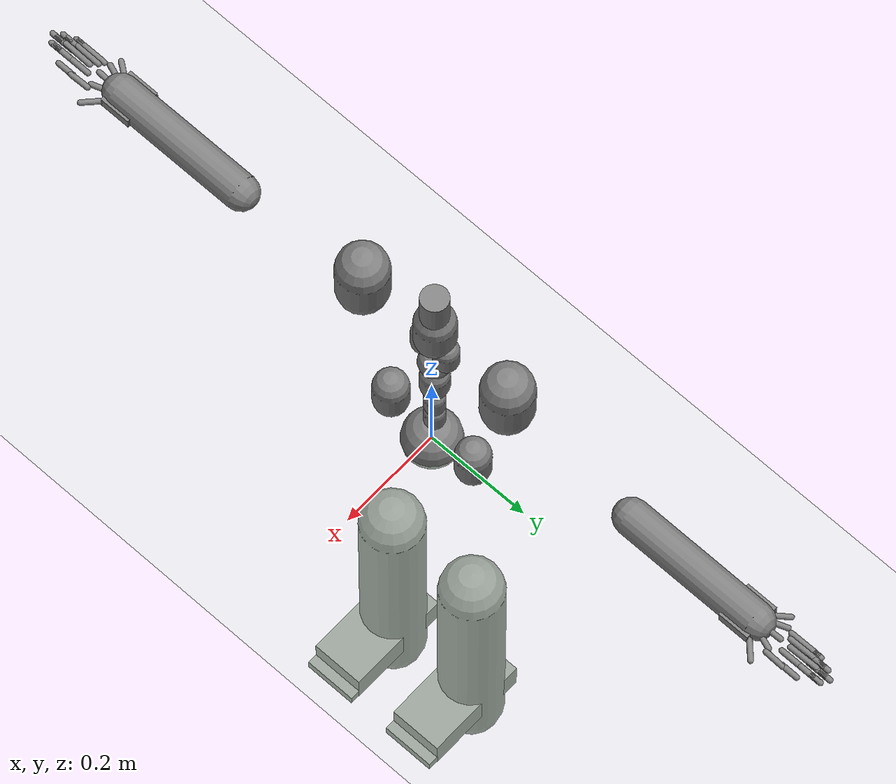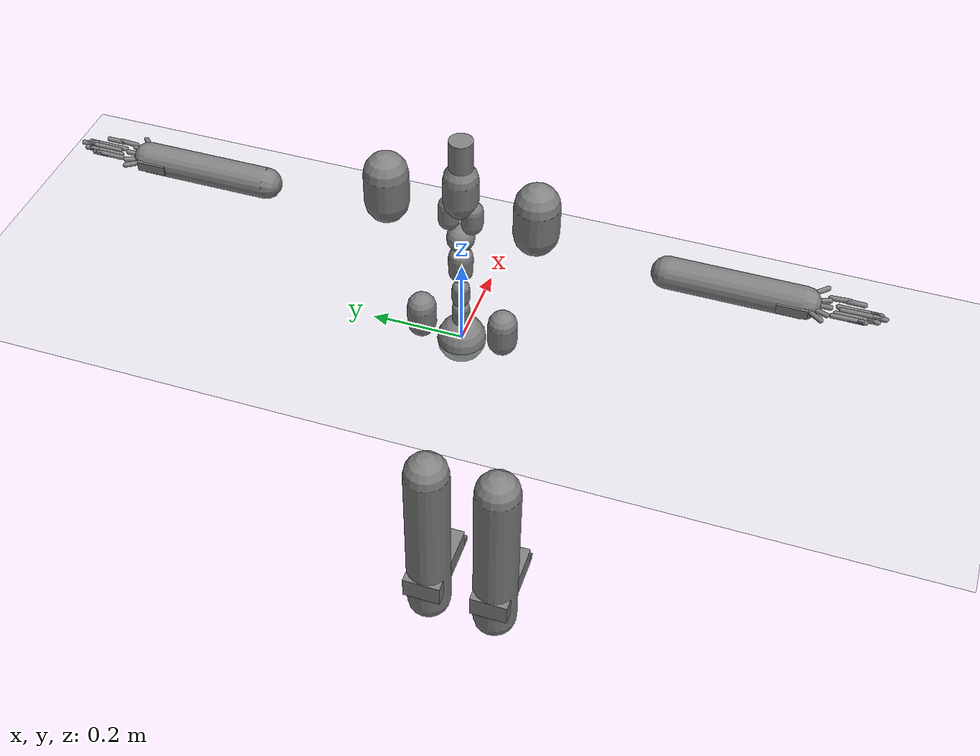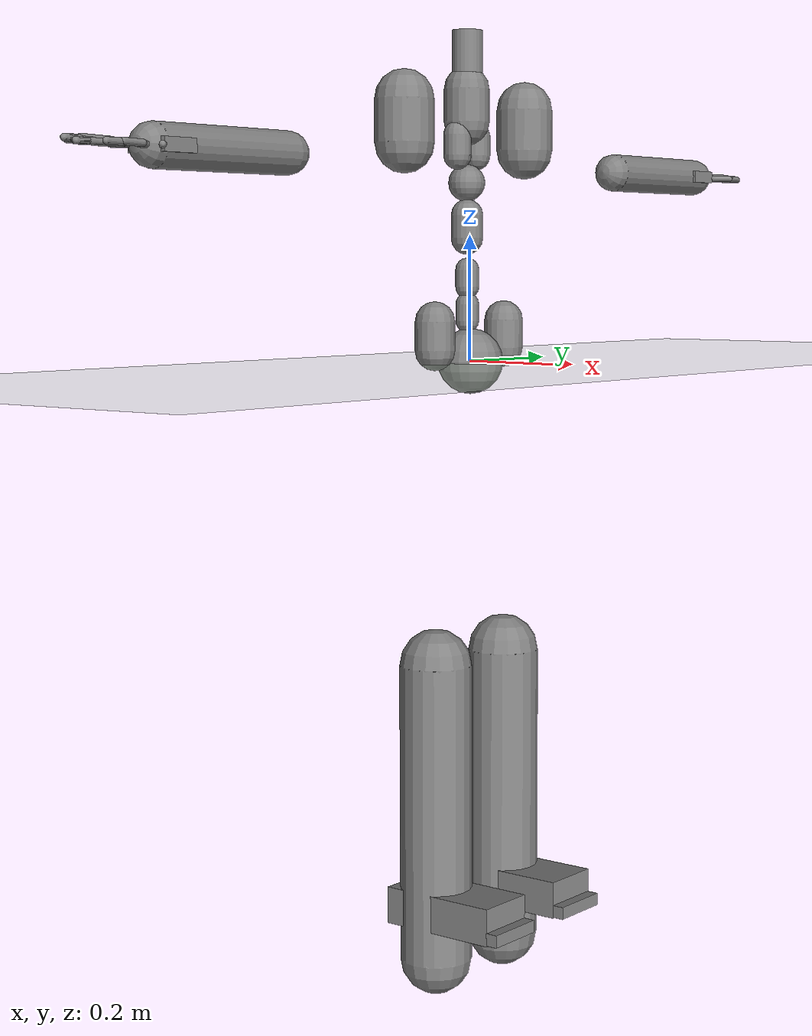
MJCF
<?xml version="1.0" ?>
<mujoco model="humanoid">
  <compiler coordinate="local"/>
  <statistic extent="2" center="0 0 1"/>
  <option timestep="0.00555"/>
  <default>
    <motor ctrlrange="-1 1" ctrllimited="true"/>
    <geom type="capsule" condim="1" friction="1.0 0.05 0.05" solimp=".9 .99 .003" solref=".015 1"/>
    <joint type="hinge" damping="0.1" stiffness="5" armature=".007" limited="true" solimplimit="0 .99 .01"/>
    <site size=".04" group="3"/>
  </default>
  <asset>
    <texture type="skybox" builtin="gradient" rgb1=".4 .5 .6" rgb2="0 0 0" width="100" height="100"/>
    <texture builtin="flat" height="1278" mark="cross" markrgb="1 1 1" name="texgeom" random="0.01" rgb1="0.8 0.6 0.4" rgb2="0.8 0.6 0.4" type="cube" width="127"/>
    <texture builtin="checker" height="100" name="texplane" rgb1="0 0 0" rgb2="0.8 0.8 0.8" type="2d" width="100"/>
    <material name="MatPlane" reflectance="0.5" shininess="1" specular="1" texrepeat="60 60" texture="texplane"/>
    <material name="geom" texture="texgeom" texuniform="true"/>
  </asset>
  <worldbody>
    <light cutoff="100" diffuse="1 1 1" dir="-0 0 -1.3" directional="true" exponent="1" pos="0 0 1.3" specular=".1 .1 .1"/>
    <geom conaffinity="1" condim="3" name="floor" pos="0 0 0" rgba="0.8 0.9 0.8 1" size="100 100 .2" type="plane" material="MatPlane"/>
    <body name="pHipOrigin" pos="0 0 0">
      <freejoint name="pHipOrigin"/>
      <geom type="sphere" contype="1" conaffinity="1" density="4629.6296296296305" size="0.05241" pos="0.0000 0.0000 -0.0000"/>
      <body name="jL5S1" pos="-0.00590591 0 0.05315303">
        <geom type="capsule" contype="1" conaffinity="1" density="1000" fromto="0 0 0.01070 0 0 0.03744" size="0.01872"/>
        <joint name="jL5S1_x" type="hinge" pos="0 0 0" axis="1 0 0" stiffness="500" damping="500" armature="0.02" range="-180.0000 180.0000"/>
        <joint name="jL5S1_y" type="hinge" pos="0 0 0" axis="0 1 0" stiffness="500" damping="500" armature="0.02" range="-180.0000 180.0000"/>
        <joint name="jL5S1_z" type="hinge" pos="0 0 0" axis="0 0 1" stiffness="500" damping="500" armature="0.02" range="-180.0000 180.0000"/>
        <body name="jL4L3" pos="0 0 0.05416304">
          <geom type="capsule" contype="1" conaffinity="1" density="1000" fromto="0 0 0.01083 0 0 0.03791" size="0.01896"/>
          <joint name="jL4L3_x" type="hinge" pos="0 0 0" axis="1 0 0" stiffness="500" damping="500" armature="0.02" range="-180.0000 180.0000"/>
          <joint name="jL4L3_y" type="hinge" pos="0 0 0" axis="0 1 0" stiffness="500" damping="500" armature="0.02" range="-180.0000 180.0000"/>
          <joint name="jL4L3_z" type="hinge" pos="0 0 0" axis="0 0 1" stiffness="500" damping="500" armature="0.02" range="-180.0000 180.0000"/>
          <body name="jL1T12" pos="-0.00056275 0 0.07294226">
            <geom type="capsule" contype="1" conaffinity="1" density="1000" fromto="0 0 0.01459 0 0 0.05106" size="0.02553"/>
            <joint name="jL1T12_x" type="hinge" pos="0 0 0" axis="1 0 0" stiffness="500" damping="500" armature="0.02" range="-180.0000 180.0000"/>
            <joint name="jL1T12_y" type="hinge" pos="0 0 0" axis="0 1 0" stiffness="500" damping="500" armature="0.02" range="-180.0000 180.0000"/>
            <joint name="jL1T12_z" type="hinge" pos="0 0 0" axis="0 0 1" stiffness="500" damping="500" armature="0.02" range="-180.0000 180.0000"/>
            <body name="jT9T8" pos="-0.00056292 0 0.07282271">
              <geom type="sphere" contype="1" conaffinity="1" density="1000" size="0.02913" pos="0.000 0.0000 0.029130"/>
              <joint name="jT9T8_x" type="hinge" pos="0 0 0" axis="1 0 0" stiffness="500" damping="500" armature="0.02" range="-180.0000 180.0000"/>
              <joint name="jT9T8_y" type="hinge" pos="0 0 0" axis="0 1 0" stiffness="500" damping="500" armature="0.02" range="-180.0000 180.0000"/>
              <joint name="jT9T8_z" type="hinge" pos="0 0 0" axis="0 0 1" stiffness="500" damping="500" armature="0.02" range="-180.0000 180.0000"/>
              <body name="jT1C7" pos="0 0 0.10307300">
                <geom type="capsule" contype="1" conaffinity="1" density="1000" fromto="0 0 0.02061 0 0 0.07215" size="0.03608"/>
                <joint name="jT1C7_x" type="hinge" pos="0 0 0" axis="1 0 0" stiffness="500" damping="500" armature="0.02" range="-180.0000 180.0000"/>
                <joint name="jT1C7_y" type="hinge" pos="0 0 0" axis="0 1 0" stiffness="500" damping="500" armature="0.02" range="-180.0000 180.0000"/>
                <joint name="jT1C7_z" type="hinge" pos="0 0 0" axis="0 0 1" stiffness="500" damping="500" armature="0.02" range="-180.0000 180.0000"/>
                <body name="jC1Head" pos="0.00096366 0 0.08168250">
                  <geom type="cylinder" contype="1" conaffinity="1" density="1000" fromto="0 0 0 0 0 0.08169" size="0.02451"/>
                  <joint name="jC1Head_x" type="hinge" pos="0 0 0" axis="1 0 0" stiffness="500" damping="500" armature="0.02" range="-180.0000 180.0000"/>
                  <joint name="jC1Head_y" type="hinge" pos="0 0 0" axis="0 1 0" stiffness="500" damping="500" armature="0.02" range="-180.0000 180.0000"/>
                  <joint name="jC1Head_z" type="hinge" pos="0 0 0" axis="0 0 1" stiffness="500" damping="500" armature="0.02" range="-180.0000 180.0000"/>
                </body>
              </body>
              <body name="jRightT4Shoulder" pos="0 -0.02407718 0.05870546">
                <geom type="capsule" contype="1" conaffinity="1" density="1000" fromto="0 0 0.01269 0 0 0.04442" size="0.02221"/>
                <joint name="jRightT4Shoulder_x" type="hinge" pos="0 0 0" axis="1 0 0" stiffness="500" damping="500" armature="0.02" range="-180.0000 180.0000"/>
                <joint name="jRightT4Shoulder_y" type="hinge" pos="0 0 0" axis="0 1 0" stiffness="500" damping="500" armature="0.02" range="-180.0000 180.0000"/>
                <joint name="jRightT4Shoulder_z" type="hinge" pos="0 0 0" axis="0 0 1" stiffness="500" damping="500" armature="0.02" range="-180.0000 180.0000"/>
                <body name="jRightShoulder" pos="0 -0.13158876 0">
                  <geom type="capsule" contype="1" conaffinity="1" density="1000" fromto="0 0 0.02632 0 0 0.09211" size="0.04606"/>
                  <joint name="jRightShoulder_x" type="hinge" pos="0 0 0" axis="1 0 0" stiffness="500" damping="500" armature="0.02" range="-180.0000 180.0000"/>
                  <joint name="jRightShoulder_y" type="hinge" pos="0 0 0" axis="0 1 0" stiffness="500" damping="500" armature="0.02" range="-180.0000 180.0000"/>
                  <joint name="jRightShoulder_z" type="hinge" pos="0 0 0" axis="0 0 1" stiffness="500" damping="500" armature="0.02" range="-180.0000 180.0000"/>
                  <body name="jRightElbow" pos="0 -0.26473373 0">
                    <geom type="capsule" contype="1" conaffinity="1" density="1000" fromto="0 0 0 0.00000000 -0.26473373 0.00000000" size="0.03177"/>
                    <joint name="jRightElbow_x" type="hinge" pos="0 0 0" axis="1 0 0" stiffness="500" damping="500" armature="0.02" range="-180.0000 180.0000"/>
                    <joint name="jRightElbow_y" type="hinge" pos="0 0 0" axis="0 1 0" stiffness="500" damping="500" armature="0.02" range="-180.0000 180.0000"/>
                    <joint name="jRightElbow_z" type="hinge" pos="0 0 0" axis="0 0 1" stiffness="500" damping="500" armature="0.02" range="-180.0000 180.0000"/>
                    <body name="jRightWrist" pos="0.00009903 -0.24605226 0">
                      <geom density="1000" type="box" pos="0 0 0" size="0.035 0.03 0.01" quat="1.0000 0.0000 0.0000 0.0000"/>
                      <joint name="jRightWrist_x" type="hinge" pos="0 0 0" axis="1 0 0" stiffness="500" damping="500" armature="0.02" range="-180.0000 180.0000"/>
                      <joint name="jRightWrist_y" type="hinge" pos="0 0 0" axis="0 1 0" stiffness="500" damping="500" armature="0.02" range="-180.0000 180.0000"/>
                      <joint name="jRightWrist_z" type="hinge" pos="0 0 0" axis="0 0 1" stiffness="500" damping="500" armature="0.02" range="-180.0000 180.0000"/>
                      <body name="jRightFirstCMC" pos="0.02861520 -0.02742928 -0.00129587">
                        <geom type="capsule" contype="1" conaffinity="1" density="1000" fromto="0 0 0 0.02861520 -0.02742928 -0.00129587" size="0.005"/>
                        <joint name="jRightFirstCMC_x" type="hinge" pos="0 0 0" axis="1 0 0" stiffness="500" damping="500" armature="0.02" range="-180.0000 180.0000"/>
                        <joint name="jRightFirstCMC_y" type="hinge" pos="0 0 0" axis="0 1 0" stiffness="500" damping="500" armature="0.02" range="-180.0000 180.0000"/>
                        <joint name="jRightFirstCMC_z" type="hinge" pos="0 0 0" axis="0 0 1" stiffness="500" damping="500" armature="0.02" range="-180.0000 180.0000"/>
                        <body name="jRightFirstMCP" pos="0.00129311 -0.03649075 0.00077105">
                          <geom type="capsule" contype="1" conaffinity="1" density="1000" fromto="0 0 0 0.00129311 -0.03649075 0.00077105" size="0.005"/>
                          <joint name="jRightFirstMCP_x" type="hinge" pos="0 0 0" axis="1 0 0" stiffness="500" damping="500" armature="0.02" range="-180.0000 180.0000"/>
                          <joint name="jRightFirstMCP_y" type="hinge" pos="0 0 0" axis="0 1 0" stiffness="500" damping="500" armature="0.02" range="-180.0000 180.0000"/>
                          <joint name="jRightFirstMCP_z" type="hinge" pos="0 0 0" axis="0 0 1" stiffness="500" damping="500" armature="0.02" range="-180.0000 180.0000"/>
                          <body name="jRightIP" pos="0 -0.03208752 0">
                            <geom type="capsule" contype="1" conaffinity="1" density="1000" fromto="0 0 0 0.00000000 -0.03208752 0.00000000" size="0.005"/>
                            <joint name="jRightIP_x" type="hinge" pos="0 0 0" axis="1 0 0" stiffness="500" damping="500" armature="0.02" range="-180.0000 180.0000"/>
                            <joint name="jRightIP_y" type="hinge" pos="0 0 0" axis="0 1 0" stiffness="500" damping="500" armature="0.02" range="-180.0000 180.0000"/>
                            <joint name="jRightIP_z" type="hinge" pos="0 0 0" axis="0 0 1" stiffness="500" damping="500" armature="0.02" range="-180.0000 180.0000"/>
                          </body>
                        </body>
                      </body>
                      <body name="jRightSecondCMC" pos="0.01096638 -0.03204030 -0.00055886">
                        <geom type="capsule" contype="1" conaffinity="1" density="1000" fromto="0 0 0 0.01096638 -0.03204030 -0.00055886" size="0.005"/>
                        <joint name="jRightSecondCMC_x" type="hinge" pos="0 0 0" axis="1 0 0" stiffness="500" damping="500" armature="0.02" range="-180.0000 180.0000"/>
                        <joint name="jRightSecondCMC_y" type="hinge" pos="0 0 0" axis="0 1 0" stiffness="500" damping="500" armature="0.02" range="-180.0000 180.0000"/>
                        <joint name="jRightSecondCMC_z" type="hinge" pos="0 0 0" axis="0 0 1" stiffness="500" damping="500" armature="0.02" range="-180.0000 180.0000"/>
                        <body name="jRightSecondMCP" pos="-0.00030859 -0.04921823 -0.00051056">
                          <geom type="capsule" contype="1" conaffinity="1" density="1000" fromto="0 0 0 -0.00030859 -0.04921823 -0.00051056" size="0.005"/>
                          <joint name="jRightSecondMCP_x" type="hinge" pos="0 0 0" axis="1 0 0" stiffness="500" damping="500" armature="0.02" range="-180.0000 180.0000"/>
                          <joint name="jRightSecondMCP_y" type="hinge" pos="0 0 0" axis="0 1 0" stiffness="500" damping="500" armature="0.02" range="-180.0000 180.0000"/>
                          <joint name="jRightSecondMCP_z" type="hinge" pos="0 0 0" axis="0 0 1" stiffness="500" damping="500" armature="0.02" range="-180.0000 180.0000"/>
                          <body name="jRightSecondPIP" pos="0 -0.03863629 0">
                            <geom type="capsule" contype="1" conaffinity="1" density="1000" fromto="0 0 0 0.00000000 -0.03863629 0.00000000" size="0.005"/>
                            <joint name="jRightSecondPIP_x" type="hinge" pos="0 0 0" axis="1 0 0" stiffness="500" damping="500" armature="0.02" range="-180.0000 180.0000"/>
                            <joint name="jRightSecondPIP_y" type="hinge" pos="0 0 0" axis="0 1 0" stiffness="500" damping="500" armature="0.02" range="-180.0000 180.0000"/>
                            <joint name="jRightSecondPIP_z" type="hinge" pos="0 0 0" axis="0 0 1" stiffness="500" damping="500" armature="0.02" range="-180.0000 180.0000"/>
                            <body name="jRightSecondDIP" pos="0 -0.02110925 0">
                              <geom type="capsule" contype="1" conaffinity="1" density="1000" fromto="0 0 0 0.00000000 -0.02110925 0.00000000" size="0.005"/>
                              <joint name="jRightSecondDIP_x" type="hinge" pos="0 0 0" axis="1 0 0" stiffness="500" damping="500" armature="0.02" range="-180.0000 180.0000"/>
                              <joint name="jRightSecondDIP_y" type="hinge" pos="0 0 0" axis="0 1 0" stiffness="500" damping="500" armature="0.02" range="-180.0000 180.0000"/>
                              <joint name="jRightSecondDIP_z" type="hinge" pos="0 0 0" axis="0 0 1" stiffness="500" damping="500" armature="0.02" range="-180.0000 180.0000"/>
                            </body>
                          </body>
                        </body>
                      </body>
                      <body name="jRightThirdCMC" pos="-0.00062600 -0.03385265 0.00142322">
                        <geom type="capsule" contype="1" conaffinity="1" density="1000" fromto="0 0 0 -0.00062600 -0.03385265 0.00142322" size="0.005"/>
                        <joint name="jRightThirdCMC_x" type="hinge" pos="0 0 0" axis="1 0 0" stiffness="500" damping="500" armature="0.02" range="-180.0000 180.0000"/>
                        <joint name="jRightThirdCMC_y" type="hinge" pos="0 0 0" axis="0 1 0" stiffness="500" damping="500" armature="0.02" range="-180.0000 180.0000"/>
                        <joint name="jRightThirdCMC_z" type="hinge" pos="0 0 0" axis="0 0 1" stiffness="500" damping="500" armature="0.02" range="-180.0000 180.0000"/>
                        <body name="jRightThirdMCP" pos="-0.00065563 -0.05431923 0.00147782">
                          <geom type="capsule" contype="1" conaffinity="1" density="1000" fromto="0 0 0 -0.00065563 -0.05431923 0.00147782" size="0.005"/>
                          <joint name="jRightThirdMCP_x" type="hinge" pos="0 0 0" axis="1 0 0" stiffness="500" damping="500" armature="0.02" range="-180.0000 180.0000"/>
                          <joint name="jRightThirdMCP_y" type="hinge" pos="0 0 0" axis="0 1 0" stiffness="500" damping="500" armature="0.02" range="-180.0000 180.0000"/>
                          <joint name="jRightThirdMCP_z" type="hinge" pos="0 0 0" axis="0 0 1" stiffness="500" damping="500" armature="0.02" range="-180.0000 180.0000"/>
                          <body name="jRightThirdPIP" pos="0 -0.03811330 0">
                            <geom type="capsule" contype="1" conaffinity="1" density="1000" fromto="0 0 0 0.00000000 -0.03811330 0.00000000" size="0.005"/>
                            <joint name="jRightThirdPIP_x" type="hinge" pos="0 0 0" axis="1 0 0" stiffness="500" damping="500" armature="0.02" range="-180.0000 180.0000"/>
                            <joint name="jRightThirdPIP_y" type="hinge" pos="0 0 0" axis="0 1 0" stiffness="500" damping="500" armature="0.02" range="-180.0000 180.0000"/>
                            <joint name="jRightThirdPIP_z" type="hinge" pos="0 0 0" axis="0 0 1" stiffness="500" damping="500" armature="0.02" range="-180.0000 180.0000"/>
                            <body name="jRightThirdDIP" pos="0 -0.02242091 0">
                              <geom type="capsule" contype="1" conaffinity="1" density="1000" fromto="0 0 0 0.00000000 -0.02242091 0.00000000" size="0.005"/>
                              <joint name="jRightThirdDIP_x" type="hinge" pos="0 0 0" axis="1 0 0" stiffness="500" damping="500" armature="0.02" range="-180.0000 180.0000"/>
                              <joint name="jRightThirdDIP_y" type="hinge" pos="0 0 0" axis="0 1 0" stiffness="500" damping="500" armature="0.02" range="-180.0000 180.0000"/>
                              <joint name="jRightThirdDIP_z" type="hinge" pos="0 0 0" axis="0 0 1" stiffness="500" damping="500" armature="0.02" range="-180.0000 180.0000"/>
                            </body>
                          </body>
                        </body>
                      </body>
                      <body name="jRightFourthCMC" pos="-0.01147633 -0.03196349 0.00075237">
                        <geom type="capsule" contype="1" conaffinity="1" density="1000" fromto="0 0 0 -0.01147633 -0.03196349 0.00075237" size="0.005"/>
                        <joint name="jRightFourthCMC_x" type="hinge" pos="0 0 0" axis="1 0 0" stiffness="500" damping="500" armature="0.02" range="-180.0000 180.0000"/>
                        <joint name="jRightFourthCMC_y" type="hinge" pos="0 0 0" axis="0 1 0" stiffness="500" damping="500" armature="0.02" range="-180.0000 180.0000"/>
                        <joint name="jRightFourthCMC_z" type="hinge" pos="0 0 0" axis="0 0 1" stiffness="500" damping="500" armature="0.02" range="-180.0000 180.0000"/>
                        <body name="jRightFourthMCP" pos="-0.00034410 -0.04716260 0.00074096">
                          <geom type="capsule" contype="1" conaffinity="1" density="1000" fromto="0 0 0 -0.00034410 -0.04716260 0.00074096" size="0.005"/>
                          <joint name="jRightFourthMCP_x" type="hinge" pos="0 0 0" axis="1 0 0" stiffness="500" damping="500" armature="0.02" range="-180.0000 180.0000"/>
                          <joint name="jRightFourthMCP_y" type="hinge" pos="0 0 0" axis="0 1 0" stiffness="500" damping="500" armature="0.02" range="-180.0000 180.0000"/>
                          <joint name="jRightFourthMCP_z" type="hinge" pos="0 0 0" axis="0 0 1" stiffness="500" damping="500" armature="0.02" range="-180.0000 180.0000"/>
                          <body name="jRightFourthPIP" pos="0 -0.03600857 0">
                            <geom type="capsule" contype="1" conaffinity="1" density="1000" fromto="0 0 0 0.00000000 -0.03600857 0.00000000" size="0.005"/>
                            <joint name="jRightFourthPIP_x" type="hinge" pos="0 0 0" axis="1 0 0" stiffness="500" damping="500" armature="0.02" range="-180.0000 180.0000"/>
                            <joint name="jRightFourthPIP_y" type="hinge" pos="0 0 0" axis="0 1 0" stiffness="500" damping="500" armature="0.02" range="-180.0000 180.0000"/>
                            <joint name="jRightFourthPIP_z" type="hinge" pos="0 0 0" axis="0 0 1" stiffness="500" damping="500" armature="0.02" range="-180.0000 180.0000"/>
                            <body name="jRightFourthDIP" pos="0 -0.02138583 0">
                              <geom type="capsule" contype="1" conaffinity="1" density="1000" fromto="0 0 0 0.00000000 -0.02138583 0.00000000" size="0.005"/>
                              <joint name="jRightFourthDIP_x" type="hinge" pos="0 0 0" axis="1 0 0" stiffness="500" damping="500" armature="0.02" range="-180.0000 180.0000"/>
                              <joint name="jRightFourthDIP_y" type="hinge" pos="0 0 0" axis="0 1 0" stiffness="500" damping="500" armature="0.02" range="-180.0000 180.0000"/>
                              <joint name="jRightFourthDIP_z" type="hinge" pos="0 0 0" axis="0 0 1" stiffness="500" damping="500" armature="0.02" range="-180.0000 180.0000"/>
                            </body>
                          </body>
                        </body>
                      </body>
                      <body name="jRightFifthCMC" pos="-0.02006048 -0.02795199 0.00055140">
                        <geom type="capsule" contype="1" conaffinity="1" density="1000" fromto="0 0 0 -0.02006048 -0.02795199 0.00055140" size="0.005"/>
                        <joint name="jRightFifthCMC_x" type="hinge" pos="0 0 0" axis="1 0 0" stiffness="500" damping="500" armature="0.02" range="-180.0000 180.0000"/>
                        <joint name="jRightFifthCMC_y" type="hinge" pos="0 0 0" axis="0 1 0" stiffness="500" damping="500" armature="0.02" range="-180.0000 180.0000"/>
                        <joint name="jRightFifthCMC_z" type="hinge" pos="0 0 0" axis="0 0 1" stiffness="500" damping="500" armature="0.02" range="-180.0000 180.0000"/>
                        <body name="jRightFifthMCP" pos="-0.00000675 -0.04568322 0.00062866">
                          <geom type="capsule" contype="1" conaffinity="1" density="1000" fromto="0 0 0 -0.00000675 -0.04568322 0.00062866" size="0.005"/>
                          <joint name="jRightFifthMCP_x" type="hinge" pos="0 0 0" axis="1 0 0" stiffness="500" damping="500" armature="0.02" range="-180.0000 180.0000"/>
                          <joint name="jRightFifthMCP_y" type="hinge" pos="0 0 0" axis="0 1 0" stiffness="500" damping="500" armature="0.02" range="-180.0000 180.0000"/>
                          <joint name="jRightFifthMCP_z" type="hinge" pos="0 0 0" axis="0 0 1" stiffness="500" damping="500" armature="0.02" range="-180.0000 180.0000"/>
                          <body name="jRightFifthPIP" pos="0 -0.03000326 0">
                            <geom type="capsule" contype="1" conaffinity="1" density="1000" fromto="0 0 0 0.00000000 -0.03000326 0.00000000" size="0.005"/>
                            <joint name="jRightFifthPIP_x" type="hinge" pos="0 0 0" axis="1 0 0" stiffness="500" damping="500" armature="0.02" range="-180.0000 180.0000"/>
                            <joint name="jRightFifthPIP_y" type="hinge" pos="0 0 0" axis="0 1 0" stiffness="500" damping="500" armature="0.02" range="-180.0000 180.0000"/>
                            <joint name="jRightFifthPIP_z" type="hinge" pos="0 0 0" axis="0 0 1" stiffness="500" damping="500" armature="0.02" range="-180.0000 180.0000"/>
                            <body name="jRightFifthDIP" pos="0 -0.01631417 0">
                              <geom type="capsule" contype="1" conaffinity="1" density="1000" fromto="0 0 0 0.00000000 -0.01631417 0.00000000" size="0.005"/>
                              <joint name="jRightFifthDIP_x" type="hinge" pos="0 0 0" axis="1 0 0" stiffness="500" damping="500" armature="0.02" range="-180.0000 180.0000"/>
                              <joint name="jRightFifthDIP_y" type="hinge" pos="0 0 0" axis="0 1 0" stiffness="500" damping="500" armature="0.02" range="-180.0000 180.0000"/>
                              <joint name="jRightFifthDIP_z" type="hinge" pos="0 0 0" axis="0 0 1" stiffness="500" damping="500" armature="0.02" range="-180.0000 180.0000"/>
                            </body>
                          </body>
                        </body>
                      </body>
                    </body>
                  </body>
                </body>
              </body>
              <body name="jLeftT4Shoulder" pos="0 0.02423874 0.05909937">
                <geom type="capsule" contype="1" conaffinity="1" density="1000" fromto="0 0 0.01278 0 0 0.04471" size="0.02236"/>
                <joint name="jLeftT4Shoulder_x" type="hinge" pos="0 0 0" axis="1 0 0" stiffness="500" damping="500" armature="0.02" range="-180.0000 180.0000"/>
                <joint name="jLeftT4Shoulder_y" type="hinge" pos="0 0 0" axis="0 1 0" stiffness="500" damping="500" armature="0.02" range="-180.0000 180.0000"/>
                <joint name="jLeftT4Shoulder_z" type="hinge" pos="0 0 0" axis="0 0 1" stiffness="500" damping="500" armature="0.02" range="-180.0000 180.0000"/>
                <body name="jLeftShoulder" pos="0 0.13102742 0">
                  <geom type="capsule" contype="1" conaffinity="1" density="1000" fromto="0 0 0.02621 0 0 0.09172" size="0.04586"/>
                  <joint name="jLeftShoulder_x" type="hinge" pos="0 0 0" axis="1 0 0" stiffness="500" damping="500" armature="0.02" range="-180.0000 180.0000"/>
                  <joint name="jLeftShoulder_y" type="hinge" pos="0 0 0" axis="0 1 0" stiffness="500" damping="500" armature="0.02" range="-180.0000 180.0000"/>
                  <joint name="jLeftShoulder_z" type="hinge" pos="0 0 0" axis="0 0 1" stiffness="500" damping="500" armature="0.02" range="-180.0000 180.0000"/>
                  <body name="jLeftElbow" pos="0 0.26417801 0">
                    <geom type="capsule" contype="1" conaffinity="1" density="1000" fromto="0 0 0 0.00000000 0.26417801 0.00000000" size="0.03170"/>
                    <joint name="jLeftElbow_x" type="hinge" pos="0 0 0" axis="1 0 0" stiffness="500" damping="500" armature="0.02" range="-180.0000 180.0000"/>
                    <joint name="jLeftElbow_y" type="hinge" pos="0 0 0" axis="0 1 0" stiffness="500" damping="500" armature="0.02" range="-180.0000 180.0000"/>
                    <joint name="jLeftElbow_z" type="hinge" pos="0 0 0" axis="0 0 1" stiffness="500" damping="500" armature="0.02" range="-180.0000 180.0000"/>
                    <body name="jLeftWrist" pos="0.00009869 0.24520825 0">
                      <geom density="1000" type="box" pos="0 0 0" size="0.035 0.03 0.01" quat="1.0000 0.0000 0.0000 0.0000"/>
                      <joint name="jLeftWrist_x" type="hinge" pos="0 0 0" axis="1 0 0" stiffness="500" damping="500" armature="0.02" range="-180.0000 180.0000"/>
                      <joint name="jLeftWrist_y" type="hinge" pos="0 0 0" axis="0 1 0" stiffness="500" damping="500" armature="0.02" range="-180.0000 180.0000"/>
                      <joint name="jLeftWrist_z" type="hinge" pos="0 0 0" axis="0 0 1" stiffness="500" damping="500" armature="0.02" range="-180.0000 180.0000"/>
                      <body name="jLeftFirstCMC" pos="0.02800754 0.02807369 -0.00125353">
                        <geom type="capsule" contype="1" conaffinity="1" density="1000" fromto="0 0 0 0.02800754 0.02807369 -0.00125353" size="0.005"/>
                        <joint name="jLeftFirstCMC_x" type="hinge" pos="0 0 0" axis="1 0 0" stiffness="500" damping="500" armature="0.02" range="-180.0000 180.0000"/>
                        <joint name="jLeftFirstCMC_y" type="hinge" pos="0 0 0" axis="0 1 0" stiffness="500" damping="500" armature="0.02" range="-180.0000 180.0000"/>
                        <joint name="jLeftFirstCMC_z" type="hinge" pos="0 0 0" axis="0 0 1" stiffness="500" damping="500" armature="0.02" range="-180.0000 180.0000"/>
                        <body name="jLeftFirstMCP" pos="0.00128066 0.03648993 0.00075142">
                          <geom type="capsule" contype="1" conaffinity="1" density="1000" fromto="0 0 0 0.00128066 0.03648993 0.00075142" size="0.005"/>
                          <joint name="jLeftFirstMCP_x" type="hinge" pos="0 0 0" axis="1 0 0" stiffness="500" damping="500" armature="0.02" range="-180.0000 180.0000"/>
                          <joint name="jLeftFirstMCP_y" type="hinge" pos="0 0 0" axis="0 1 0" stiffness="500" damping="500" armature="0.02" range="-180.0000 180.0000"/>
                          <joint name="jLeftFirstMCP_z" type="hinge" pos="0 0 0" axis="0 0 1" stiffness="500" damping="500" armature="0.02" range="-180.0000 180.0000"/>
                          <body name="jLeftIP" pos="0 0.03208752 0">
                            <geom type="capsule" contype="1" conaffinity="1" density="1000" fromto="0 0 0 0.00000000 0.03208752 0.00000000" size="0.005"/>
                            <joint name="jLeftIP_x" type="hinge" pos="0 0 0" axis="1 0 0" stiffness="500" damping="500" armature="0.02" range="-180.0000 180.0000"/>
                            <joint name="jLeftIP_y" type="hinge" pos="0 0 0" axis="0 1 0" stiffness="500" damping="500" armature="0.02" range="-180.0000 180.0000"/>
                            <joint name="jLeftIP_z" type="hinge" pos="0 0 0" axis="0 0 1" stiffness="500" damping="500" armature="0.02" range="-180.0000 180.0000"/>
                          </body>
                        </body>
                      </body>
                      <body name="jLeftSecondCMC" pos="0.01109270 0.03198135 -0.00056348">
                        <geom type="capsule" contype="1" conaffinity="1" density="1000" fromto="0 0 0 0.01109270 0.03198135 -0.00056348" size="0.005"/>
                        <joint name="jLeftSecondCMC_x" type="hinge" pos="0 0 0" axis="1 0 0" stiffness="500" damping="500" armature="0.02" range="-180.0000 180.0000"/>
                        <joint name="jLeftSecondCMC_y" type="hinge" pos="0 0 0" axis="0 1 0" stiffness="500" damping="500" armature="0.02" range="-180.0000 180.0000"/>
                        <joint name="jLeftSecondCMC_z" type="hinge" pos="0 0 0" axis="0 0 1" stiffness="500" damping="500" armature="0.02" range="-180.0000 180.0000"/>
                        <body name="jLeftSecondMCP" pos="-0.00026907 0.04921924 -0.00051686">
                          <geom type="capsule" contype="1" conaffinity="1" density="1000" fromto="0 0 0 -0.00026907 0.04921924 -0.00051686" size="0.005"/>
                          <joint name="jLeftSecondMCP_x" type="hinge" pos="0 0 0" axis="1 0 0" stiffness="500" damping="500" armature="0.02" range="-180.0000 180.0000"/>
                          <joint name="jLeftSecondMCP_y" type="hinge" pos="0 0 0" axis="0 1 0" stiffness="500" damping="500" armature="0.02" range="-180.0000 180.0000"/>
                          <joint name="jLeftSecondMCP_z" type="hinge" pos="0 0 0" axis="0 0 1" stiffness="500" damping="500" armature="0.02" range="-180.0000 180.0000"/>
                          <body name="jLeftSecondPIP" pos="0 0.03863629 0">
                            <geom type="capsule" contype="1" conaffinity="1" density="1000" fromto="0 0 0 0.00000000 0.03863629 0.00000000" size="0.005"/>
                            <joint name="jLeftSecondPIP_x" type="hinge" pos="0 0 0" axis="1 0 0" stiffness="500" damping="500" armature="0.02" range="-180.0000 180.0000"/>
                            <joint name="jLeftSecondPIP_y" type="hinge" pos="0 0 0" axis="0 1 0" stiffness="500" damping="500" armature="0.02" range="-180.0000 180.0000"/>
                            <joint name="jLeftSecondPIP_z" type="hinge" pos="0 0 0" axis="0 0 1" stiffness="500" damping="500" armature="0.02" range="-180.0000 180.0000"/>
                            <body name="jLeftSecondDIP" pos="0 0.02110925 0">
                              <geom type="capsule" contype="1" conaffinity="1" density="1000" fromto="0 0 0 0.00000000 0.02110925 0.00000000" size="0.005"/>
                              <joint name="jLeftSecondDIP_x" type="hinge" pos="0 0 0" axis="1 0 0" stiffness="500" damping="500" armature="0.02" range="-180.0000 180.0000"/>
                              <joint name="jLeftSecondDIP_y" type="hinge" pos="0 0 0" axis="0 1 0" stiffness="500" damping="500" armature="0.02" range="-180.0000 180.0000"/>
                              <joint name="jLeftSecondDIP_z" type="hinge" pos="0 0 0" axis="0 0 1" stiffness="500" damping="500" armature="0.02" range="-180.0000 180.0000"/>
                            </body>
                          </body>
                        </body>
                      </body>
                      <body name="jLeftThirdCMC" pos="-0.00062968 0.03385569 0.00137578">
                        <geom type="capsule" contype="1" conaffinity="1" density="1000" fromto="0 0 0 -0.00062968 0.03385569 0.00137578" size="0.005"/>
                        <joint name="jLeftThirdCMC_x" type="hinge" pos="0 0 0" axis="1 0 0" stiffness="500" damping="500" armature="0.02" range="-180.0000 180.0000"/>
                        <joint name="jLeftThirdCMC_y" type="hinge" pos="0 0 0" axis="0 1 0" stiffness="500" damping="500" armature="0.02" range="-180.0000 180.0000"/>
                        <joint name="jLeftThirdCMC_z" type="hinge" pos="0 0 0" axis="0 0 1" stiffness="500" damping="500" armature="0.02" range="-180.0000 180.0000"/>
                        <body name="jLeftThirdMCP" pos="-0.00066092 0.05432028 0.00144811">
                          <geom type="capsule" contype="1" conaffinity="1" density="1000" fromto="0 0 0 -0.00066092 0.05432028 0.00144811" size="0.005"/>
                          <joint name="jLeftThirdMCP_x" type="hinge" pos="0 0 0" axis="1 0 0" stiffness="500" damping="500" armature="0.02" range="-180.0000 180.0000"/>
                          <joint name="jLeftThirdMCP_y" type="hinge" pos="0 0 0" axis="0 1 0" stiffness="500" damping="500" armature="0.02" range="-180.0000 180.0000"/>
                          <joint name="jLeftThirdMCP_z" type="hinge" pos="0 0 0" axis="0 0 1" stiffness="500" damping="500" armature="0.02" range="-180.0000 180.0000"/>
                          <body name="jLeftThirdPIP" pos="0 0.03811330 0">
                            <geom type="capsule" contype="1" conaffinity="1" density="1000" fromto="0 0 0 0.00000000 0.03811330 0.00000000" size="0.005"/>
                            <joint name="jLeftThirdPIP_x" type="hinge" pos="0 0 0" axis="1 0 0" stiffness="500" damping="500" armature="0.02" range="-180.0000 180.0000"/>
                            <joint name="jLeftThirdPIP_y" type="hinge" pos="0 0 0" axis="0 1 0" stiffness="500" damping="500" armature="0.02" range="-180.0000 180.0000"/>
                            <joint name="jLeftThirdPIP_z" type="hinge" pos="0 0 0" axis="0 0 1" stiffness="500" damping="500" armature="0.02" range="-180.0000 180.0000"/>
                            <body name="jLeftThirdDIP" pos="0 0.02242091 0">
                              <geom type="capsule" contype="1" conaffinity="1" density="1000" fromto="0 0 0 0.00000000 0.02242091 0.00000000" size="0.005"/>
                              <joint name="jLeftThirdDIP_x" type="hinge" pos="0 0 0" axis="1 0 0" stiffness="500" damping="500" armature="0.02" range="-180.0000 180.0000"/>
                              <joint name="jLeftThirdDIP_y" type="hinge" pos="0 0 0" axis="0 1 0" stiffness="500" damping="500" armature="0.02" range="-180.0000 180.0000"/>
                              <joint name="jLeftThirdDIP_z" type="hinge" pos="0 0 0" axis="0 0 1" stiffness="500" damping="500" armature="0.02" range="-180.0000 180.0000"/>
                            </body>
                          </body>
                        </body>
                      </body>
                      <body name="jLeftFourthCMC" pos="-0.01189744 0.03179999 0.00080315">
                        <geom type="capsule" contype="1" conaffinity="1" density="1000" fromto="0 0 0 -0.01189744 0.03179999 0.00080315" size="0.005"/>
                        <joint name="jLeftFourthCMC_x" type="hinge" pos="0 0 0" axis="1 0 0" stiffness="500" damping="500" armature="0.02" range="-180.0000 180.0000"/>
                        <joint name="jLeftFourthCMC_y" type="hinge" pos="0 0 0" axis="0 1 0" stiffness="500" damping="500" armature="0.02" range="-180.0000 180.0000"/>
                        <joint name="jLeftFourthCMC_z" type="hinge" pos="0 0 0" axis="0 0 1" stiffness="500" damping="500" armature="0.02" range="-180.0000 180.0000"/>
                        <body name="jLeftFourthMCP" pos="-0.00037005 0.04715990 0.00078365">
                          <geom type="capsule" contype="1" conaffinity="1" density="1000" fromto="0 0 0 -0.00037005 0.04715990 0.00078365" size="0.005"/>
                          <joint name="jLeftFourthMCP_x" type="hinge" pos="0 0 0" axis="1 0 0" stiffness="500" damping="500" armature="0.02" range="-180.0000 180.0000"/>
                          <joint name="jLeftFourthMCP_y" type="hinge" pos="0 0 0" axis="0 1 0" stiffness="500" damping="500" armature="0.02" range="-180.0000 180.0000"/>
                          <joint name="jLeftFourthMCP_z" type="hinge" pos="0 0 0" axis="0 0 1" stiffness="500" damping="500" armature="0.02" range="-180.0000 180.0000"/>
                          <body name="jLeftFourthPIP" pos="0 0.03600857 0">
                            <geom type="capsule" contype="1" conaffinity="1" density="1000" fromto="0 0 0 0.00000000 0.03600857 0.00000000" size="0.005"/>
                            <joint name="jLeftFourthPIP_x" type="hinge" pos="0 0 0" axis="1 0 0" stiffness="500" damping="500" armature="0.02" range="-180.0000 180.0000"/>
                            <joint name="jLeftFourthPIP_y" type="hinge" pos="0 0 0" axis="0 1 0" stiffness="500" damping="500" armature="0.02" range="-180.0000 180.0000"/>
                            <joint name="jLeftFourthPIP_z" type="hinge" pos="0 0 0" axis="0 0 1" stiffness="500" damping="500" armature="0.02" range="-180.0000 180.0000"/>
                            <body name="jLeftFourthDIP" pos="0 0.02138583 0">
                              <geom type="capsule" contype="1" conaffinity="1" density="1000" fromto="0 0 0 0.00000000 0.02138583 0.00000000" size="0.005"/>
                              <joint name="jLeftFourthDIP_x" type="hinge" pos="0 0 0" axis="1 0 0" stiffness="500" damping="500" armature="0.02" range="-180.0000 180.0000"/>
                              <joint name="jLeftFourthDIP_y" type="hinge" pos="0 0 0" axis="0 1 0" stiffness="500" damping="500" armature="0.02" range="-180.0000 180.0000"/>
                              <joint name="jLeftFourthDIP_z" type="hinge" pos="0 0 0" axis="0 0 1" stiffness="500" damping="500" armature="0.02" range="-180.0000 180.0000"/>
                            </body>
                          </body>
                        </body>
                      </body>
                      <body name="jLeftFifthCMC" pos="-0.02066819 0.02751010 0.00056027">
                        <geom type="capsule" contype="1" conaffinity="1" density="1000" fromto="0 0 0 -0.02066819 0.02751010 0.00056027" size="0.005"/>
                        <joint name="jLeftFifthCMC_x" type="hinge" pos="0 0 0" axis="1 0 0" stiffness="500" damping="500" armature="0.02" range="-180.0000 180.0000"/>
                        <joint name="jLeftFifthCMC_y" type="hinge" pos="0 0 0" axis="0 1 0" stiffness="500" damping="500" armature="0.02" range="-180.0000 180.0000"/>
                        <joint name="jLeftFifthCMC_z" type="hinge" pos="0 0 0" axis="0 0 1" stiffness="500" damping="500" armature="0.02" range="-180.0000 180.0000"/>
                        <body name="jLeftFifthMCP" pos="-0.00001296 0.04568197 0.00065733">
                          <geom type="capsule" contype="1" conaffinity="1" density="1000" fromto="0 0 0 -0.00001296 0.04568197 0.00065733" size="0.005"/>
                          <joint name="jLeftFifthMCP_x" type="hinge" pos="0 0 0" axis="1 0 0" stiffness="500" damping="500" armature="0.02" range="-180.0000 180.0000"/>
                          <joint name="jLeftFifthMCP_y" type="hinge" pos="0 0 0" axis="0 1 0" stiffness="500" damping="500" armature="0.02" range="-180.0000 180.0000"/>
                          <joint name="jLeftFifthMCP_z" type="hinge" pos="0 0 0" axis="0 0 1" stiffness="500" damping="500" armature="0.02" range="-180.0000 180.0000"/>
                          <body name="jLeftFifthPIP" pos="0 0.03000326 0">
                            <geom type="capsule" contype="1" conaffinity="1" density="1000" fromto="0 0 0 0.00000000 0.03000326 0.00000000" size="0.005"/>
                            <joint name="jLeftFifthPIP_x" type="hinge" pos="0 0 0" axis="1 0 0" stiffness="500" damping="500" armature="0.02" range="-180.0000 180.0000"/>
                            <joint name="jLeftFifthPIP_y" type="hinge" pos="0 0 0" axis="0 1 0" stiffness="500" damping="500" armature="0.02" range="-180.0000 180.0000"/>
                            <joint name="jLeftFifthPIP_z" type="hinge" pos="0 0 0" axis="0 0 1" stiffness="500" damping="500" armature="0.02" range="-180.0000 180.0000"/>
                            <body name="jLeftFifthDIP" pos="0 0.01631417 0">
                              <geom type="capsule" contype="1" conaffinity="1" density="1000" fromto="0 0 0 0.00000000 0.01631417 0.00000000" size="0.005"/>
                              <joint name="jLeftFifthDIP_x" type="hinge" pos="0 0 0" axis="1 0 0" stiffness="500" damping="500" armature="0.02" range="-180.0000 180.0000"/>
                              <joint name="jLeftFifthDIP_y" type="hinge" pos="0 0 0" axis="0 1 0" stiffness="500" damping="500" armature="0.02" range="-180.0000 180.0000"/>
                              <joint name="jLeftFifthDIP_z" type="hinge" pos="0 0 0" axis="0 0 1" stiffness="500" damping="500" armature="0.02" range="-180.0000 180.0000"/>
                            </body>
                          </body>
                        </body>
                      </body>
                    </body>
                  </body>
                </body>
              </body>
            </body>
          </body>
        </body>
      </body>
      <body name="jRightHip" pos="-0.00015231 -0.09039058 0.00137120">
        <geom type="capsule" contype="1" conaffinity="1" density="1000" fromto="0 0 0.01808 0 0 0.06328" size="0.03164"/>
        <joint name="jRightHip_x" type="hinge" pos="0 0 0" axis="1 0 0" stiffness="500" damping="500" armature="0.02" range="-180.0000 180.0000"/>
        <joint name="jRightHip_y" type="hinge" pos="0 0 0" axis="0 1 0" stiffness="500" damping="500" armature="0.02" range="-180.0000 180.0000"/>
        <joint name="jRightHip_z" type="hinge" pos="0 0 0" axis="0 0 1" stiffness="500" damping="500" armature="0.02" range="-180.0000 180.0000"/>
        <body name="jRightKnee" pos="0.00005755 0 -0.48266047">
          <geom type="capsule" contype="1" conaffinity="1" density="1000" fromto="0 0 0 0.00005755 0.00000000 -0.48266047" size="0.05792"/>
          <joint name="jRightKnee_x" type="hinge" pos="0 0 0" axis="1 0 0" stiffness="500" damping="500" armature="0.02" range="-180.0000 180.0000"/>
          <joint name="jRightKnee_y" type="hinge" pos="0 0 0" axis="0 1 0" stiffness="500" damping="500" armature="0.02" range="-180.0000 180.0000"/>
          <joint name="jRightKnee_z" type="hinge" pos="0 0 0" axis="0 0 1" stiffness="500" damping="500" armature="0.02" range="-180.0000 180.0000"/>
          <body name="jRightAnkle" pos="0.00041101 0 -0.36400312">
            <geom density="1000" type="box" pos="0.04 0. -0.03" size="0.1 0.05 0.03" quat="1.0 0 0 0"/>
            <joint name="jRightAnkle_x" type="hinge" pos="0 0 0" axis="1 0 0" stiffness="500" damping="500" armature="0.02" range="-180.0000 180.0000"/>
            <joint name="jRightAnkle_y" type="hinge" pos="0 0 0" axis="0 1 0" stiffness="500" damping="500" armature="0.02" range="-180.0000 180.0000"/>
            <joint name="jRightAnkle_z" type="hinge" pos="0 0 0" axis="0 0 1" stiffness="500" damping="500" armature="0.02" range="-180.0000 180.0000"/>
            <body name="jRightBallFoot" pos="0.14878544 0 -0.06825696">
              <geom density="1000" type="box" pos="0 0 0.02" size="0.01 0.05 0.01" quat="1.0 0 0 0"/>
              <joint name="jRightBallFoot_x" type="hinge" pos="0 0 0" axis="1 0 0" stiffness="500" damping="500" armature="0.02" range="-180.0000 180.0000"/>
              <joint name="jRightBallFoot_y" type="hinge" pos="0 0 0" axis="0 1 0" stiffness="500" damping="500" armature="0.02" range="-180.0000 180.0000"/>
              <joint name="jRightBallFoot_z" type="hinge" pos="0 0 0" axis="0 0 1" stiffness="500" damping="500" armature="0.02" range="-180.0000 180.0000"/>
            </body>
          </body>
        </body>
      </body>
      <body name="jLeftHip" pos="-0.00014911 0.08964597 0.00134192">
        <geom type="capsule" contype="1" conaffinity="1" density="1000" fromto="0 0 0.01793 0 0 0.06276" size="0.03138"/>
        <joint name="jLeftHip_x" type="hinge" pos="0 0 0" axis="1 0 0" stiffness="500" damping="500" armature="0.02" range="-180.0000 180.0000"/>
        <joint name="jLeftHip_y" type="hinge" pos="0 0 0" axis="0 1 0" stiffness="500" damping="500" armature="0.02" range="-180.0000 180.0000"/>
        <joint name="jLeftHip_z" type="hinge" pos="0 0 0" axis="0 0 1" stiffness="500" damping="500" armature="0.02" range="-180.0000 180.0000"/>
        <body name="jLeftKnee" pos="0.00005751 0 -0.48234409">
          <geom type="capsule" contype="1" conaffinity="1" density="1000" fromto="0 0 0 0.00005751 0.00000000 -0.48234409" size="0.05788"/>
          <joint name="jLeftKnee_x" type="hinge" pos="0 0 0" axis="1 0 0" stiffness="500" damping="500" armature="0.02" range="-180.0000 180.0000"/>
          <joint name="jLeftKnee_y" type="hinge" pos="0 0 0" axis="0 1 0" stiffness="500" damping="500" armature="0.02" range="-180.0000 180.0000"/>
          <joint name="jLeftKnee_z" type="hinge" pos="0 0 0" axis="0 0 1" stiffness="500" damping="500" armature="0.02" range="-180.0000 180.0000"/>
          <body name="jLeftAnkle" pos="0.00041101 0 -0.36400312">
            <geom density="1000" type="box" pos="0.04 0. -0.03" size="0.1 0.05 0.03" quat="1.0 0 0 0"/>
            <joint name="jLeftAnkle_x" type="hinge" pos="0 0 0" axis="1 0 0" stiffness="500" damping="500" armature="0.02" range="-180.0000 180.0000"/>
            <joint name="jLeftAnkle_y" type="hinge" pos="0 0 0" axis="0 1 0" stiffness="500" damping="500" armature="0.02" range="-180.0000 180.0000"/>
            <joint name="jLeftAnkle_z" type="hinge" pos="0 0 0" axis="0 0 1" stiffness="500" damping="500" armature="0.02" range="-180.0000 180.0000"/>
            <body name="jLeftBallFoot" pos="0.14878544 0 -0.06825696">
              <geom density="1000" type="box" pos="0 0 0.02" size="0.01 0.05 0.01" quat="1.0 0 0 0"/>
              <joint name="jLeftBallFoot_x" type="hinge" pos="0 0 0" axis="1 0 0" stiffness="500" damping="500" armature="0.02" range="-180.0000 180.0000"/>
              <joint name="jLeftBallFoot_y" type="hinge" pos="0 0 0" axis="0 1 0" stiffness="500" damping="500" armature="0.02" range="-180.0000 180.0000"/>
              <joint name="jLeftBallFoot_z" type="hinge" pos="0 0 0" axis="0 0 1" stiffness="500" damping="500" armature="0.02" range="-180.0000 180.0000"/>
            </body>
          </body>
        </body>
      </body>
    </body>
  </worldbody>
  <actuator>
    <motor name="jL5S1_x" joint="jL5S1_x" gear="500"/>
    <motor name="jL5S1_y" joint="jL5S1_y" gear="500"/>
    <motor name="jL5S1_z" joint="jL5S1_z" gear="500"/>
    <motor name="jL4L3_x" joint="jL4L3_x" gear="500"/>
    <motor name="jL4L3_y" joint="jL4L3_y" gear="500"/>
    <motor name="jL4L3_z" joint="jL4L3_z" gear="500"/>
    <motor name="jL1T12_x" joint="jL1T12_x" gear="500"/>
    <motor name="jL1T12_y" joint="jL1T12_y" gear="500"/>
    <motor name="jL1T12_z" joint="jL1T12_z" gear="500"/>
    <motor name="jT9T8_x" joint="jT9T8_x" gear="500"/>
    <motor name="jT9T8_y" joint="jT9T8_y" gear="500"/>
    <motor name="jT9T8_z" joint="jT9T8_z" gear="500"/>
    <motor name="jT1C7_x" joint="jT1C7_x" gear="500"/>
    <motor name="jT1C7_y" joint="jT1C7_y" gear="500"/>
    <motor name="jT1C7_z" joint="jT1C7_z" gear="500"/>
    <motor name="jC1Head_x" joint="jC1Head_x" gear="500"/>
    <motor name="jC1Head_y" joint="jC1Head_y" gear="500"/>
    <motor name="jC1Head_z" joint="jC1Head_z" gear="500"/>
    <motor name="jRightT4Shoulder_x" joint="jRightT4Shoulder_x" gear="500"/>
    <motor name="jRightT4Shoulder_y" joint="jRightT4Shoulder_y" gear="500"/>
    <motor name="jRightT4Shoulder_z" joint="jRightT4Shoulder_z" gear="500"/>
    <motor name="jRightShoulder_x" joint="jRightShoulder_x" gear="500"/>
    <motor name="jRightShoulder_y" joint="jRightShoulder_y" gear="500"/>
    <motor name="jRightShoulder_z" joint="jRightShoulder_z" gear="500"/>
    <motor name="jRightElbow_x" joint="jRightElbow_x" gear="500"/>
    <motor name="jRightElbow_y" joint="jRightElbow_y" gear="500"/>
    <motor name="jRightElbow_z" joint="jRightElbow_z" gear="500"/>
    <motor name="jRightWrist_x" joint="jRightWrist_x" gear="500"/>
    <motor name="jRightWrist_y" joint="jRightWrist_y" gear="500"/>
    <motor name="jRightWrist_z" joint="jRightWrist_z" gear="500"/>
    <motor name="jLeftT4Shoulder_x" joint="jLeftT4Shoulder_x" gear="500"/>
    <motor name="jLeftT4Shoulder_y" joint="jLeftT4Shoulder_y" gear="500"/>
    <motor name="jLeftT4Shoulder_z" joint="jLeftT4Shoulder_z" gear="500"/>
    <motor name="jLeftShoulder_x" joint="jLeftShoulder_x" gear="500"/>
    <motor name="jLeftShoulder_y" joint="jLeftShoulder_y" gear="500"/>
    <motor name="jLeftShoulder_z" joint="jLeftShoulder_z" gear="500"/>
    <motor name="jLeftElbow_x" joint="jLeftElbow_x" gear="500"/>
    <motor name="jLeftElbow_y" joint="jLeftElbow_y" gear="500"/>
    <motor name="jLeftElbow_z" joint="jLeftElbow_z" gear="500"/>
    <motor name="jLeftWrist_x" joint="jLeftWrist_x" gear="500"/>
    <motor name="jLeftWrist_y" joint="jLeftWrist_y" gear="500"/>
    <motor name="jLeftWrist_z" joint="jLeftWrist_z" gear="500"/>
    <motor name="jRightHip_x" joint="jRightHip_x" gear="500"/>
    <motor name="jRightHip_y" joint="jRightHip_y" gear="500"/>
    <motor name="jRightHip_z" joint="jRightHip_z" gear="500"/>
    <motor name="jRightKnee_x" joint="jRightKnee_x" gear="500"/>
    <motor name="jRightKnee_y" joint="jRightKnee_y" gear="500"/>
    <motor name="jRightKnee_z" joint="jRightKnee_z" gear="500"/>
    <motor name="jRightAnkle_x" joint="jRightAnkle_x" gear="500"/>
    <motor name="jRightAnkle_y" joint="jRightAnkle_y" gear="500"/>
    <motor name="jRightAnkle_z" joint="jRightAnkle_z" gear="500"/>
    <motor name="jRightBallFoot_x" joint="jRightBallFoot_x" gear="500"/>
    <motor name="jRightBallFoot_y" joint="jRightBallFoot_y" gear="500"/>
    <motor name="jRightBallFoot_z" joint="jRightBallFoot_z" gear="500"/>
    <motor name="jLeftHip_x" joint="jLeftHip_x" gear="500"/>
    <motor name="jLeftHip_y" joint="jLeftHip_y" gear="500"/>
    <motor name="jLeftHip_z" joint="jLeftHip_z" gear="500"/>
    <motor name="jLeftKnee_x" joint="jLeftKnee_x" gear="500"/>
    <motor name="jLeftKnee_y" joint="jLeftKnee_y" gear="500"/>
    <motor name="jLeftKnee_z" joint="jLeftKnee_z" gear="500"/>
    <motor name="jLeftAnkle_x" joint="jLeftAnkle_x" gear="500"/>
    <motor name="jLeftAnkle_y" joint="jLeftAnkle_y" gear="500"/>
    <motor name="jLeftAnkle_z" joint="jLeftAnkle_z" gear="500"/>
    <motor name="jLeftBallFoot_x" joint="jLeftBallFoot_x" gear="500"/>
    <motor name="jLeftBallFoot_y" joint="jLeftBallFoot_y" gear="500"/>
    <motor name="jLeftBallFoot_z" joint="jLeftBallFoot_z" gear="500"/>
    <motor name="jLeftFirstCMC_x" joint="jLeftFirstCMC_x" gear="500"/>
    <motor name="jLeftFirstCMC_y" joint="jLeftFirstCMC_y" gear="500"/>
    <motor name="jLeftFirstCMC_z" joint="jLeftFirstCMC_z" gear="500"/>
    <motor name="jLeftFirstMCP_x" joint="jLeftFirstMCP_x" gear="500"/>
    <motor name="jLeftFirstMCP_y" joint="jLeftFirstMCP_y" gear="500"/>
    <motor name="jLeftFirstMCP_z" joint="jLeftFirstMCP_z" gear="500"/>
    <motor name="jLeftIP_x" joint="jLeftIP_x" gear="500"/>
    <motor name="jLeftIP_y" joint="jLeftIP_y" gear="500"/>
    <motor name="jLeftIP_z" joint="jLeftIP_z" gear="500"/>
    <motor name="jLeftSecondCMC_x" joint="jLeftSecondCMC_x" gear="500"/>
    <motor name="jLeftSecondCMC_y" joint="jLeftSecondCMC_y" gear="500"/>
    <motor name="jLeftSecondCMC_z" joint="jLeftSecondCMC_z" gear="500"/>
    <motor name="jLeftSecondMCP_x" joint="jLeftSecondMCP_x" gear="500"/>
    <motor name="jLeftSecondMCP_y" joint="jLeftSecondMCP_y" gear="500"/>
    <motor name="jLeftSecondMCP_z" joint="jLeftSecondMCP_z" gear="500"/>
    <motor name="jLeftSecondPIP_x" joint="jLeftSecondPIP_x" gear="500"/>
    <motor name="jLeftSecondPIP_y" joint="jLeftSecondPIP_y" gear="500"/>
    <motor name="jLeftSecondPIP_z" joint="jLeftSecondPIP_z" gear="500"/>
    <motor name="jLeftSecondDIP_x" joint="jLeftSecondDIP_x" gear="500"/>
    <motor name="jLeftSecondDIP_y" joint="jLeftSecondDIP_y" gear="500"/>
    <motor name="jLeftSecondDIP_z" joint="jLeftSecondDIP_z" gear="500"/>
    <motor name="jLeftThirdCMC_x" joint="jLeftThirdCMC_x" gear="500"/>
    <motor name="jLeftThirdCMC_y" joint="jLeftThirdCMC_y" gear="500"/>
    <motor name="jLeftThirdCMC_z" joint="jLeftThirdCMC_z" gear="500"/>
    <motor name="jLeftThirdMCP_x" joint="jLeftThirdMCP_x" gear="500"/>
    <motor name="jLeftThirdMCP_y" joint="jLeftThirdMCP_y" gear="500"/>
    <motor name="jLeftThirdMCP_z" joint="jLeftThirdMCP_z" gear="500"/>
    <motor name="jLeftThirdPIP_x" joint="jLeftThirdPIP_x" gear="500"/>
    <motor name="jLeftThirdPIP_y" joint="jLeftThirdPIP_y" gear="500"/>
    <motor name="jLeftThirdPIP_z" joint="jLeftThirdPIP_z" gear="500"/>
    <motor name="jLeftThirdDIP_x" joint="jLeftThirdDIP_x" gear="500"/>
    <motor name="jLeftThirdDIP_y" joint="jLeftThirdDIP_y" gear="500"/>
    <motor name="jLeftThirdDIP_z" joint="jLeftThirdDIP_z" gear="500"/>
    <motor name="jLeftFourthCMC_x" joint="jLeftFourthCMC_x" gear="500"/>
    <motor name="jLeftFourthCMC_y" joint="jLeftFourthCMC_y" gear="500"/>
    <motor name="jLeftFourthCMC_z" joint="jLeftFourthCMC_z" gear="500"/>
    <motor name="jLeftFourthMCP_x" joint="jLeftFourthMCP_x" gear="500"/>
    <motor name="jLeftFourthMCP_y" joint="jLeftFourthMCP_y" gear="500"/>
    <motor name="jLeftFourthMCP_z" joint="jLeftFourthMCP_z" gear="500"/>
    <motor name="jLeftFourthPIP_x" joint="jLeftFourthPIP_x" gear="500"/>
    <motor name="jLeftFourthPIP_y" joint="jLeftFourthPIP_y" gear="500"/>
    <motor name="jLeftFourthPIP_z" joint="jLeftFourthPIP_z" gear="500"/>
    <motor name="jLeftFourthDIP_x" joint="jLeftFourthDIP_x" gear="500"/>
    <motor name="jLeftFourthDIP_y" joint="jLeftFourthDIP_y" gear="500"/>
    <motor name="jLeftFourthDIP_z" joint="jLeftFourthDIP_z" gear="500"/>
    <motor name="jLeftFifthCMC_x" joint="jLeftFifthCMC_x" gear="500"/>
    <motor name="jLeftFifthCMC_y" joint="jLeftFifthCMC_y" gear="500"/>
    <motor name="jLeftFifthCMC_z" joint="jLeftFifthCMC_z" gear="500"/>
    <motor name="jLeftFifthMCP_x" joint="jLeftFifthMCP_x" gear="500"/>
    <motor name="jLeftFifthMCP_y" joint="jLeftFifthMCP_y" gear="500"/>
    <motor name="jLeftFifthMCP_z" joint="jLeftFifthMCP_z" gear="500"/>
    <motor name="jLeftFifthPIP_x" joint="jLeftFifthPIP_x" gear="500"/>
    <motor name="jLeftFifthPIP_y" joint="jLeftFifthPIP_y" gear="500"/>
    <motor name="jLeftFifthPIP_z" joint="jLeftFifthPIP_z" gear="500"/>
    <motor name="jLeftFifthDIP_x" joint="jLeftFifthDIP_x" gear="500"/>
    <motor name="jLeftFifthDIP_y" joint="jLeftFifthDIP_y" gear="500"/>
    <motor name="jLeftFifthDIP_z" joint="jLeftFifthDIP_z" gear="500"/>
    <motor name="jRightFirstCMC_x" joint="jRightFirstCMC_x" gear="500"/>
    <motor name="jRightFirstCMC_y" joint="jRightFirstCMC_y" gear="500"/>
    <motor name="jRightFirstCMC_z" joint="jRightFirstCMC_z" gear="500"/>
    <motor name="jRightFirstMCP_x" joint="jRightFirstMCP_x" gear="500"/>
    <motor name="jRightFirstMCP_y" joint="jRightFirstMCP_y" gear="500"/>
    <motor name="jRightFirstMCP_z" joint="jRightFirstMCP_z" gear="500"/>
    <motor name="jRightIP_x" joint="jRightIP_x" gear="500"/>
    <motor name="jRightIP_y" joint="jRightIP_y" gear="500"/>
    <motor name="jRightIP_z" joint="jRightIP_z" gear="500"/>
    <motor name="jRightSecondCMC_x" joint="jRightSecondCMC_x" gear="500"/>
    <motor name="jRightSecondCMC_y" joint="jRightSecondCMC_y" gear="500"/>
    <motor name="jRightSecondCMC_z" joint="jRightSecondCMC_z" gear="500"/>
    <motor name="jRightSecondMCP_x" joint="jRightSecondMCP_x" gear="500"/>
    <motor name="jRightSecondMCP_y" joint="jRightSecondMCP_y" gear="500"/>
    <motor name="jRightSecondMCP_z" joint="jRightSecondMCP_z" gear="500"/>
    <motor name="jRightSecondPIP_x" joint="jRightSecondPIP_x" gear="500"/>
    <motor name="jRightSecondPIP_y" joint="jRightSecondPIP_y" gear="500"/>
    <motor name="jRightSecondPIP_z" joint="jRightSecondPIP_z" gear="500"/>
    <motor name="jRightSecondDIP_x" joint="jRightSecondDIP_x" gear="500"/>
    <motor name="jRightSecondDIP_y" joint="jRightSecondDIP_y" gear="500"/>
    <motor name="jRightSecondDIP_z" joint="jRightSecondDIP_z" gear="500"/>
    <motor name="jRightThirdCMC_x" joint="jRightThirdCMC_x" gear="500"/>
    <motor name="jRightThirdCMC_y" joint="jRightThirdCMC_y" gear="500"/>
    <motor name="jRightThirdCMC_z" joint="jRightThirdCMC_z" gear="500"/>
    <motor name="jRightThirdMCP_x" joint="jRightThirdMCP_x" gear="500"/>
    <motor name="jRightThirdMCP_y" joint="jRightThirdMCP_y" gear="500"/>
    <motor name="jRightThirdMCP_z" joint="jRightThirdMCP_z" gear="500"/>
    <motor name="jRightThirdPIP_x" joint="jRightThirdPIP_x" gear="500"/>
    <motor name="jRightThirdPIP_y" joint="jRightThirdPIP_y" gear="500"/>
    <motor name="jRightThirdPIP_z" joint="jRightThirdPIP_z" gear="500"/>
    <motor name="jRightThirdDIP_x" joint="jRightThirdDIP_x" gear="500"/>
    <motor name="jRightThirdDIP_y" joint="jRightThirdDIP_y" gear="500"/>
    <motor name="jRightThirdDIP_z" joint="jRightThirdDIP_z" gear="500"/>
    <motor name="jRightFourthCMC_x" joint="jRightFourthCMC_x" gear="500"/>
    <motor name="jRightFourthCMC_y" joint="jRightFourthCMC_y" gear="500"/>
    <motor name="jRightFourthCMC_z" joint="jRightFourthCMC_z" gear="500"/>
    <motor name="jRightFourthMCP_x" joint="jRightFourthMCP_x" gear="500"/>
    <motor name="jRightFourthMCP_y" joint="jRightFourthMCP_y" gear="500"/>
    <motor name="jRightFourthMCP_z" joint="jRightFourthMCP_z" gear="500"/>
    <motor name="jRightFourthPIP_x" joint="jRightFourthPIP_x" gear="500"/>
    <motor name="jRightFourthPIP_y" joint="jRightFourthPIP_y" gear="500"/>
    <motor name="jRightFourthPIP_z" joint="jRightFourthPIP_z" gear="500"/>
    <motor name="jRightFourthDIP_x" joint="jRightFourthDIP_x" gear="500"/>
    <motor name="jRightFourthDIP_y" joint="jRightFourthDIP_y" gear="500"/>
    <motor name="jRightFourthDIP_z" joint="jRightFourthDIP_z" gear="500"/>
    <motor name="jRightFifthCMC_x" joint="jRightFifthCMC_x" gear="500"/>
    <motor name="jRightFifthCMC_y" joint="jRightFifthCMC_y" gear="500"/>
    <motor name="jRightFifthCMC_z" joint="jRightFifthCMC_z" gear="500"/>
    <motor name="jRightFifthMCP_x" joint="jRightFifthMCP_x" gear="500"/>
    <motor name="jRightFifthMCP_y" joint="jRightFifthMCP_y" gear="500"/>
    <motor name="jRightFifthMCP_z" joint="jRightFifthMCP_z" gear="500"/>
    <motor name="jRightFifthPIP_x" joint="jRightFifthPIP_x" gear="500"/>
    <motor name="jRightFifthPIP_y" joint="jRightFifthPIP_y" gear="500"/>
    <motor name="jRightFifthPIP_z" joint="jRightFifthPIP_z" gear="500"/>
    <motor name="jRightFifthDIP_x" joint="jRightFifthDIP_x" gear="500"/>
    <motor name="jRightFifthDIP_y" joint="jRightFifthDIP_y" gear="500"/>
    <motor name="jRightFifthDIP_z" joint="jRightFifthDIP_z" gear="500"/>
  </actuator>
</mujoco>
